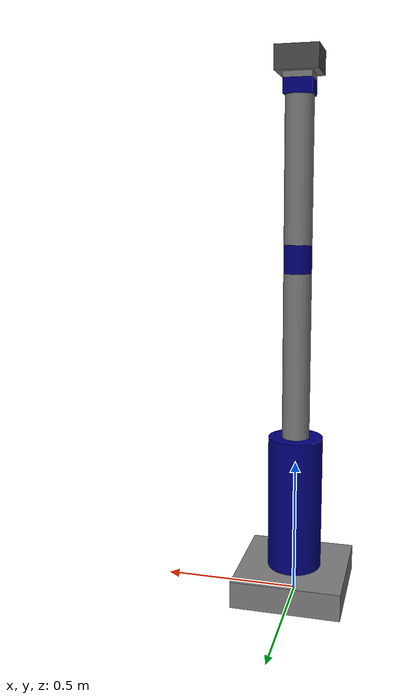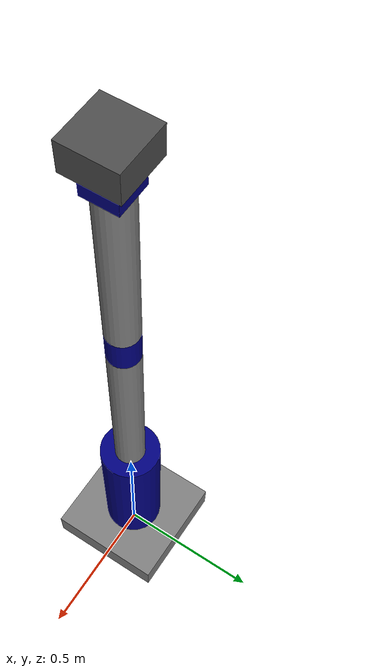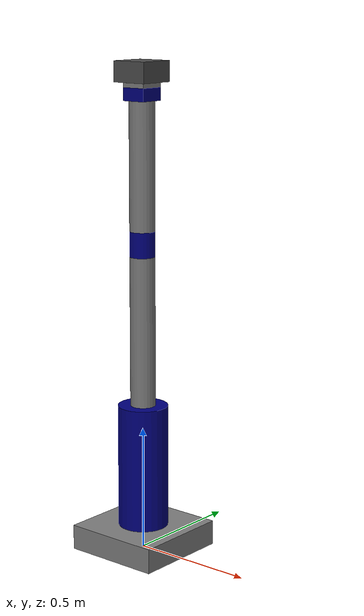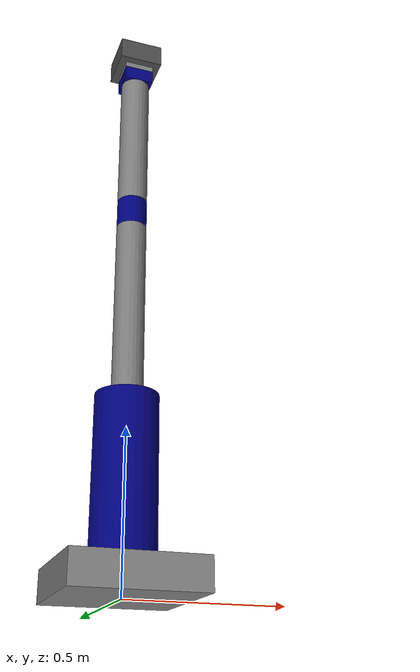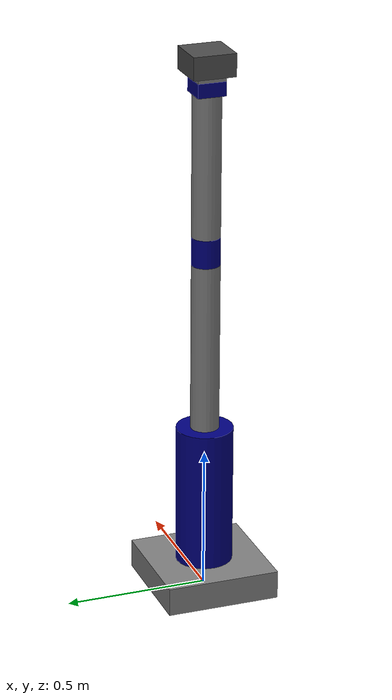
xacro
<?xml version="1.0"?>
<robot xmlns:xacro="http://www.ros.org/wiki/xacro" name="my_robot">

    <material name="grey">
        <color rgba="0.5 0.5 0.5 1"/>
    </material>
    <material name="blue">
        <color rgba="0 0 0.5 1"/>
    </material>
    <material name="darkgrey">
        <color rgba="0.3 0.3 0.3 1"/>
    </material>

    <!-- BASE LINK -->
    <link name="base_link">
        <visual>
            <geometry>
                <box size="0.4 0.4 0.1" />
            </geometry>
            <origin xyz="0 0 0.05" rpy="0 0 0" />
            <material name="grey" />
        </visual>
        <collision>
            <geometry>
                <box size="0.4 0.4 0.1" />
            </geometry>
            <origin xyz="0 0 0.05" rpy="0 0 0" />
        </collision>
        <inertial>
            <mass value="2.0" />
            <inertia ixx="0.05" ixy="0" ixz="0" iyy="0.05" iyz="0" izz="0.08" />
        </inertial>
    </link>

    <!-- SHOULDER LINK -->
    <link name="shoulder_link">
        <visual>
            <geometry>
                <cylinder length="0.5" radius="0.1" />
            </geometry>
            <origin xyz="0 0 0.25" rpy="0 0 0" />
            <material name="blue" />
        </visual>
        <collision>
            <geometry>
                <box size="0.2 0.2 0.5" />
            </geometry>
            <origin xyz="0 0 0.25" rpy="0 0 0" />
        </collision>
        <inertial>
            <mass value="1.5" />
            <inertia ixx="0.02" ixy="0" ixz="0" iyy="0.02" iyz="0" izz="0.01" />
        </inertial>
    </link>

    <!-- ARM LINK -->
    <link name="arm_link">
        <visual>
            <geometry>
                <cylinder length="0.6" radius="0.05" />
            </geometry>
            <origin xyz="0 0 0.3" rpy="0 0 0" />
            <material name="grey" />
        </visual>
        <collision>
            <geometry>
                <box size="0.1 0.1 0.6" />
            </geometry>
            <origin xyz="0 0 0.3" rpy="0 0 0" />
        </collision>
        <inertial>
            <mass value="1.0" />
            <inertia ixx="0.03" ixy="0" ixz="0" iyy="0.03" iyz="0" izz="0.001" />
        </inertial>
    </link>

    <!-- ELBOW LINK -->
    <link name="elbow_link">
        <visual>
            <geometry>
                <cylinder length="0.1" radius="0.05" />
            </geometry>
            <origin xyz="0 0 0.05" rpy="0 0 0" />
            <material name="blue" />
        </visual>
        <collision>
            <geometry>
                <box size="0.1 0.1 0.1" />
            </geometry>
            <origin xyz="0 0 0.05" rpy="0 0 0" />
        </collision>
        <inertial>
            <mass value="0.5" />
            <inertia ixx="0.001" ixy="0" ixz="0" iyy="0.001" iyz="0" izz="0.001" />
        </inertial>
    </link>

    <!-- FOREARM LINK -->
    <link name="forearm_link">
        <visual>
            <geometry>
                <cylinder length="0.5" radius="0.05" />
            </geometry>
            <origin xyz="0 0 0.25" rpy="0 0 0" />
            <material name="grey" />
        </visual>
        <collision>
            <geometry>
                <box size="0.1 0.1 0.5" />
            </geometry>
            <origin xyz="0 0 0.25" rpy="0 0 0" />
        </collision>
        <inertial>
            <mass value="0.8" />
            <inertia ixx="0.02" ixy="0" ixz="0" iyy="0.02" iyz="0" izz="0.001" />
        </inertial>
    </link>

    <!-- WRIST LINK -->
    <link name="wrist_link">
        <visual>
            <geometry>
                <box size="0.1 0.1 0.05" />
            </geometry>
            <origin xyz="0 0 0.025" rpy="0 0 0" />
            <material name="blue" />
        </visual>
        <collision>
            <geometry>
                <box size="0.1 0.1 0.05" />
            </geometry>
            <origin xyz="0 0 0.025" rpy="0 0 0" />
        </collision>
        <inertial>
            <mass value="0.3" />
            <inertia ixx="0.0001" ixy="0" ixz="0" iyy="0.0001" iyz="0" izz="0.0001" />
        </inertial>
    </link>

    <!-- HAND LINK -->
    <link name="hand_link">
        <visual>
            <geometry>
                <box size="0.1 0.1 0.02" />
            </geometry>
            <origin xyz="0 0 0.01" rpy="0 0 0" />
            <material name="grey" />
        </visual>
        <collision>
            <geometry>
                <box size="0.1 0.1 0.02" />
            </geometry>
            <origin xyz="0 0 0.01" rpy="0 0 0" />
        </collision>
        <inertial>
            <mass value="0.2" />
            <inertia ixx="0.00005" ixy="0" ixz="0" iyy="0.00005" iyz="0" izz="0.00005" />
        </inertial>
    </link>

    <!-- OBJECT HOLDER LINK -->
    <link name="holder_link">
        <visual>
            <geometry>
                <box size="0.15 0.15 0.08" />
            </geometry>
            <origin xyz="0 0 0.04" rpy="0 0 0" />
            <material name="darkgrey" />
        </visual>
        <collision>
            <geometry>
                <box size="0.15 0.15 0.08" />
            </geometry>
            <origin xyz="0 0 0.04" rpy="0 0 0" />
        </collision>
        <inertial>
            <mass value="0.3" />
            <inertia ixx="0.0002" ixy="0" ixz="0" iyy="0.0002" iyz="0" izz="0.0003" />
        </inertial>
    </link>

    <!-- TOOL LINK (End Effector) -->
    <link name="tool_link" />

    <!-- JOINT 1 - Base to Shoulder Rotating Base -->
    <joint name="joint1" type="revolute">
        <parent link="base_link" />
        <child link="shoulder_link" />
        <origin xyz="0 0 0.1" rpy="0 0 0" />
        <axis xyz="0 0 1" />
        <limit effort="1000.0" velocity="1.0" lower="-3.14" upper="3.14" />
        <dynamics damping="0.1" friction="0.1" />
    </joint>

    <!-- JOINT 2 - Shoulder to Arm Pitch -->
    <joint name="joint2" type="revolute">
        <parent link="shoulder_link" />
        <child link="arm_link" />
        <origin xyz="0 0 0.5" rpy="0 0 0" />
        <axis xyz="0 1 0" />
        <limit effort="1000.0" velocity="1.0" lower="0" upper="2.5" />
        <dynamics damping="0.1" friction="0.1" />
    </joint>

    <!-- JOINT 3 - Arm to Elbow Pitch -->
    <joint name="joint3" type="revolute">
        <parent link="arm_link" />
        <child link="elbow_link" />
        <origin xyz="0 0 0.6" rpy="0 0 0" />
        <axis xyz="0 1 0" />
        <limit effort="1000.0" velocity="1.0" lower="0" upper="2.5" />
        <dynamics damping="0.1" friction="0.1" />
    </joint>

    <!-- JOINT 4 - Elbow to Forearm Roll -->
    <joint name="joint4" type="revolute">
        <parent link="elbow_link" />
        <child link="forearm_link" />
        <origin xyz="0 0 0.1" rpy="0 0 0" />
        <axis xyz="0 0 1" />
        <limit effort="1000.0" velocity="1.0" lower="-3.14" upper="3.14" />
        <dynamics damping="0.1" friction="0.1" />
    </joint>

    <!-- JOINT 5 - Forearm to Wrist Pitch -->
    <joint name="joint5" type="revolute">
        <parent link="forearm_link" />
        <child link="wrist_link" />
        <origin xyz="0 0 0.5" rpy="0 0 0" />
        <axis xyz="0 1 0" />
        <limit effort="1000.0" velocity="1.0" lower="-1.57" upper="1.57" />
        <dynamics damping="0.1" friction="0.1" />
    </joint>

    <!-- JOINT 6 - Wrist to Hand Continuous Roll -->
    <joint name="joint6" type="continuous">
        <parent link="wrist_link" />
        <child link="hand_link" />
        <origin xyz="0 0 0.05" rpy="0 0 0" />
        <axis xyz="0 0 1" />
        <dynamics damping="0.05" friction="0.05" />
    </joint>

    <!-- JOINT 7 - Hand to Holder Object Gripper -->
    <joint name="hand_holder_joint" type="fixed">
        <parent link="hand_link" />
        <child link="holder_link" />
        <origin xyz="0 0 0.02" rpy="0 0 0" />
    </joint>

    <!-- JOINT 8 - Holder to Tool Tool Object Interface -->
    <joint name="holder_tool_joint" type="fixed">
        <parent link="holder_link" />
        <child link="tool_link" />
        <origin xyz="0 0 0.08" rpy="0 0 0" />
    </joint>

</robot>
